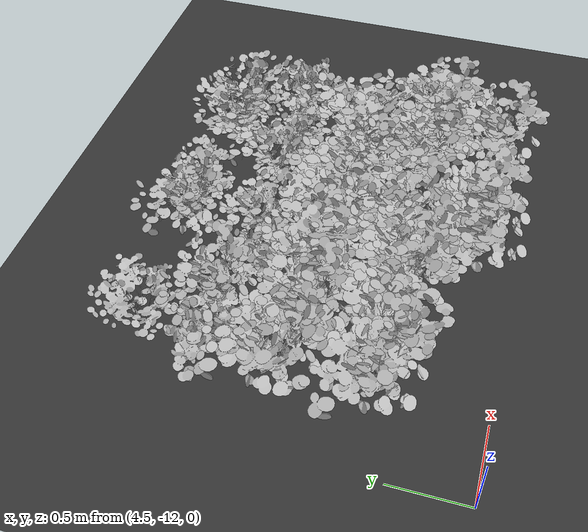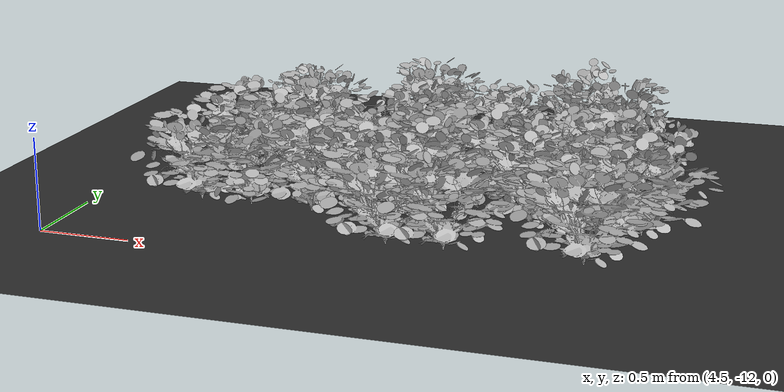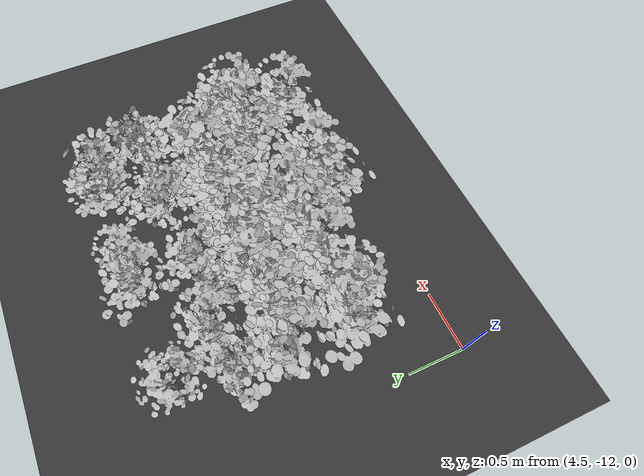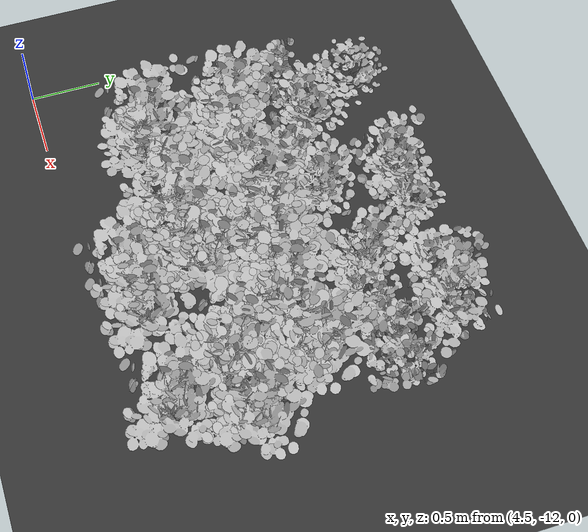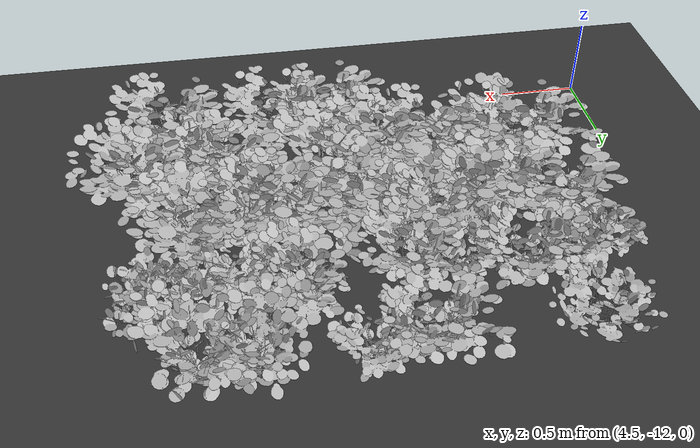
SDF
<sdf version="1.7">
 <world name="default">
  <model name="ground_plane">
   <static>1</static>
   <link name="link">
    <collision name="collision">
     <geometry><plane><normal>0 0 1</normal><size>100 100</size></plane></geometry>
     <surface>
      <contact><collide_bitmask>65535</collide_bitmask></contact>
      <friction><ode><mu>100</mu><mu2>50</mu2></ode></friction>
     </surface>
    </collision>
    <visual name="visual">
     <cast_shadows>0</cast_shadows>
     <geometry><plane><normal>0 0 1</normal><size>100 100</size></plane></geometry>
     <material>
      <ambient>0.2 0.2 0.2 1.0</ambient>
      <diffuse>0.2 0.2 0.2 1.0</diffuse>
      <specular>0.2 0.2 0.2 1.0</specular>
      <emissive>0.2 0.2 0.2 1.0</emissive>
     </material>
    </visual>
   </link>
  </model>
  <model name="ground">
   <pose>5 -0.5 0.01  3.141592654 0 0</pose>
   <static>true</static>
   <link name="body">
    <visual name="visual">
     <cast_shadows>0</cast_shadows>
     <geometry>
      <mesh><uri>file:///home/ifcosta/final_ws/src/cnn_line/worlds/models/ground.obj</uri></mesh>
     </geometry>
    </visual>
   </link>
  </model>
  <model name="plt_30017">
   <pose>5.1 -10.3 0.0129 0.0 0.0 0.31238</pose>
   <static>true</static>
   <link name="body">
    <visual name="visual">
     <geometry>
      <mesh><uri>file:///home/ifcosta/final_ws/src/cnn_line/worlds/models/plant33.obj</uri></mesh>
     </geometry>
    </visual>
   </link>
  </model>
  <model name="plt_30018">
   <pose>5.41 -10.2 0.0167 0.0 0.0 -0.31577</pose>
   <static>true</static>
   <link name="body">
    <visual name="visual">
     <geometry>
      <mesh><uri>file:///home/ifcosta/final_ws/src/cnn_line/worlds/models/plant30.obj</uri></mesh>
     </geometry>
    </visual>
   </link>
  </model>
  <model name="plt_30019">
   <pose>5.73 -10.3 0.012 0.0 0.0 -0.173</pose>
   <static>true</static>
   <link name="body">
    <visual name="visual">
     <geometry>
      <mesh><uri>file:///home/ifcosta/final_ws/src/cnn_line/worlds/models/plant34.obj</uri></mesh>
     </geometry>
    </visual>
   </link>
  </model>
  <model name="plt_30020">
   <pose>6.03 -10.3 0.0152 0.0 0.0 -0.27084</pose>
   <static>true</static>
   <link name="body">
    <visual name="visual">
     <geometry>
      <mesh><uri>file:///home/ifcosta/final_ws/src/cnn_line/worlds/models/plant36.obj</uri></mesh>
     </geometry>
    </visual>
   </link>
  </model>
  <model name="plt_30022">
   <pose>6.61 -10.2 0.0153 0.0 0.0 -0.57249</pose>
   <static>true</static>
   <link name="body">
    <visual name="visual">
     <geometry>
      <mesh><uri>file:///home/ifcosta/final_ws/src/cnn_line/worlds/models/plant36.obj</uri></mesh>
     </geometry>
    </visual>
   </link>
  </model>
  <model name="plt_30023">
   <pose>6.89 -10.3 0.0155 0.0 0.0 -0.2691</pose>
   <static>true</static>
   <link name="body">
    <visual name="visual">
     <geometry>
      <mesh><uri>file:///home/ifcosta/final_ws/src/cnn_line/worlds/models/plant31.obj</uri></mesh>
     </geometry>
    </visual>
   </link>
  </model>
  <model name="plt_30024">
   <pose>7.18 -10.3 0.0155 0.0 0.0 -0.92946</pose>
   <static>true</static>
   <link name="body">
    <visual name="visual">
     <geometry>
      <mesh><uri>file:///home/ifcosta/final_ws/src/cnn_line/worlds/models/plant33.obj</uri></mesh>
     </geometry>
    </visual>
   </link>
  </model>
  <model name="plt_30025">
   <pose>7.49 -10.2 0.0176 0.0 0.0 0.76057</pose>
   <static>true</static>
   <link name="body">
    <visual name="visual">
     <geometry>
      <mesh><uri>file:///home/ifcosta/final_ws/src/cnn_line/worlds/models/plant33.obj</uri></mesh>
     </geometry>
    </visual>
   </link>
  </model>
  <model name="plt_30051">
   <pose>5.14 -9.8 0.0164 0.0 0.0 -1.2351</pose>
   <static>true</static>
   <link name="body">
    <visual name="visual">
     <geometry>
      <mesh><uri>file:///home/ifcosta/final_ws/src/cnn_line/worlds/models/plant35.obj</uri></mesh>
     </geometry>
    </visual>
   </link>
  </model>
  <model name="plt_30054">
   <pose>6.01 -9.78 0.0155 0.0 0.0 -0.52844</pose>
   <static>true</static>
   <link name="body">
    <visual name="visual">
     <geometry>
      <mesh><uri>file:///home/ifcosta/final_ws/src/cnn_line/worlds/models/plant30.obj</uri></mesh>
     </geometry>
    </visual>
   </link>
  </model>
  <model name="plt_30055">
   <pose>6.29 -9.75 0.015 0.0 0.0 -0.61661</pose>
   <static>true</static>
   <link name="body">
    <visual name="visual">
     <geometry>
      <mesh><uri>file:///home/ifcosta/final_ws/src/cnn_line/worlds/models/plant31.obj</uri></mesh>
     </geometry>
    </visual>
   </link>
  </model>
  <model name="plt_30057">
   <pose>6.9 -9.77 0.0161 0.0 0.0 1.0536</pose>
   <static>true</static>
   <link name="body">
    <visual name="visual">
     <geometry>
      <mesh><uri>file:///home/ifcosta/final_ws/src/cnn_line/worlds/models/plant30.obj</uri></mesh>
     </geometry>
    </visual>
   </link>
  </model>
  <model name="plt_30058">
   <pose>7.17 -9.78 0.016 0.0 0.0 2.6557</pose>
   <static>true</static>
   <link name="body">
    <visual name="visual">
     <geometry>
      <mesh><uri>file:///home/ifcosta/final_ws/src/cnn_line/worlds/models/plant30.obj</uri></mesh>
     </geometry>
    </visual>
   </link>
  </model>
  <model name="plt_40123">
   <pose>6.28 -11.7 0.0147 0.0 0.0 0.31965</pose>
   <static>true</static>
   <link name="body">
    <visual name="visual">
     <geometry>
      <mesh><uri>file:///home/ifcosta/final_ws/src/cnn_line/worlds/models/plant37.obj</uri></mesh>
     </geometry>
    </visual>
   </link>
  </model>
  <model name="plt_40124">
   <pose>6.58 -11.7 0.0153 0.0 0.0 0.26518</pose>
   <static>true</static>
   <link name="body">
    <visual name="visual">
     <geometry>
      <mesh><uri>file:///home/ifcosta/final_ws/src/cnn_line/worlds/models/plant37.obj</uri></mesh>
     </geometry>
    </visual>
   </link>
  </model>
  <model name="plt_40126">
   <pose>7.28 -11.7 0.0137 0.0 0.0 -0.015619</pose>
   <static>true</static>
   <link name="body">
    <visual name="visual">
     <geometry>
      <mesh><uri>file:///home/ifcosta/final_ws/src/cnn_line/worlds/models/plant37.obj</uri></mesh>
     </geometry>
    </visual>
   </link>
  </model>
  <model name="plt_40153">
   <pose>5.1 -11.3 0.0173 0.0 0.0 0.098443</pose>
   <static>true</static>
   <link name="body">
    <visual name="visual">
     <geometry>
      <mesh><uri>file:///home/ifcosta/final_ws/src/cnn_line/worlds/models/plant37.obj</uri></mesh>
     </geometry>
    </visual>
   </link>
  </model>
  <model name="plt_40154">
   <pose>5.39 -11.3 0.0154 0.0 0.0 -1.7746</pose>
   <static>true</static>
   <link name="body">
    <visual name="visual">
     <geometry>
      <mesh><uri>file:///home/ifcosta/final_ws/src/cnn_line/worlds/models/plant37.obj</uri></mesh>
     </geometry>
    </visual>
   </link>
  </model>
  <model name="plt_40155">
   <pose>5.74 -11.3 0.0122 0.0 0.0 -0.29898</pose>
   <static>true</static>
   <link name="body">
    <visual name="visual">
     <geometry>
      <mesh><uri>file:///home/ifcosta/final_ws/src/cnn_line/worlds/models/plant37.obj</uri></mesh>
     </geometry>
    </visual>
   </link>
  </model>
  <model name="plt_40156">
   <pose>6.02 -11.3 0.0153 0.0 0.0 -0.4565</pose>
   <static>true</static>
   <link name="body">
    <visual name="visual">
     <geometry>
      <mesh><uri>file:///home/ifcosta/final_ws/src/cnn_line/worlds/models/plant37.obj</uri></mesh>
     </geometry>
    </visual>
   </link>
  </model>
  <model name="plt_40157">
   <pose>6.33 -11.2 0.0133 0.0 0.0 -0.28777</pose>
   <static>true</static>
   <link name="body">
    <visual name="visual">
     <geometry>
      <mesh><uri>file:///home/ifcosta/final_ws/src/cnn_line/worlds/models/plant37.obj</uri></mesh>
     </geometry>
    </visual>
   </link>
  </model>
  <model name="plt_40159">
   <pose>6.91 -11.2 0.0125 0.0 0.0 -0.35303</pose>
   <static>true</static>
   <link name="body">
    <visual name="visual">
     <geometry>
      <mesh><uri>file:///home/ifcosta/final_ws/src/cnn_line/worlds/models/plant37.obj</uri></mesh>
     </geometry>
    </visual>
   </link>
  </model>
  <model name="plt_40160">
   <pose>7.25 -11.3 0.016 0.0 0.0 0.59628</pose>
   <static>true</static>
   <link name="body">
    <visual name="visual">
     <geometry>
      <mesh><uri>file:///home/ifcosta/final_ws/src/cnn_line/worlds/models/plant37.obj</uri></mesh>
     </geometry>
    </visual>
   </link>
  </model>
  <model name="plt_40161">
   <pose>7.49 -11.2 0.0172 0.0 0.0 -0.35032</pose>
   <static>true</static>
   <link name="body">
    <visual name="visual">
     <geometry>
      <mesh><uri>file:///home/ifcosta/final_ws/src/cnn_line/worlds/models/plant37.obj</uri></mesh>
     </geometry>
    </visual>
   </link>
  </model>
  <model name="plt_40187">
   <pose>5.07 -10.7 0.0149 0.0 0.0 -0.26624</pose>
   <static>true</static>
   <link name="body">
    <visual name="visual">
     <geometry>
      <mesh><uri>file:///home/ifcosta/final_ws/src/cnn_line/worlds/models/plant37.obj</uri></mesh>
     </geometry>
    </visual>
   </link>
  </model>
  <model name="plt_40188">
   <pose>5.41 -10.8 0.017 0.0 0.0 0.039749</pose>
   <static>true</static>
   <link name="body">
    <visual name="visual">
     <geometry>
      <mesh><uri>file:///home/ifcosta/final_ws/src/cnn_line/worlds/models/plant37.obj</uri></mesh>
     </geometry>
    </visual>
   </link>
  </model>
  <model name="plt_40189">
   <pose>5.72 -10.7 0.0153 0.0 0.0 0.8003</pose>
   <static>true</static>
   <link name="body">
    <visual name="visual">
     <geometry>
      <mesh><uri>file:///home/ifcosta/final_ws/src/cnn_line/worlds/models/plant37.obj</uri></mesh>
     </geometry>
    </visual>
   </link>
  </model>
  <model name="plt_40190">
   <pose>6.0 -10.7 0.0149 0.0 0.0 -1.8294</pose>
   <static>true</static>
   <link name="body">
    <visual name="visual">
     <geometry>
      <mesh><uri>file:///home/ifcosta/final_ws/src/cnn_line/worlds/models/plant37.obj</uri></mesh>
     </geometry>
    </visual>
   </link>
  </model>
  <model name="plt_40191">
   <pose>6.29 -10.8 0.0168 0.0 0.0 -1.4749</pose>
   <static>true</static>
   <link name="body">
    <visual name="visual">
     <geometry>
      <mesh><uri>file:///home/ifcosta/final_ws/src/cnn_line/worlds/models/plant37.obj</uri></mesh>
     </geometry>
    </visual>
   </link>
  </model>
  <model name="plt_40192">
   <pose>6.66 -10.8 0.0149 0.0 0.0 -0.19252</pose>
   <static>true</static>
   <link name="body">
    <visual name="visual">
     <geometry>
      <mesh><uri>file:///home/ifcosta/final_ws/src/cnn_line/worlds/models/plant37.obj</uri></mesh>
     </geometry>
    </visual>
   </link>
  </model>
  <model name="plt_40193">
   <pose>6.9 -10.8 0.013 0.0 0.0 1.3436</pose>
   <static>true</static>
   <link name="body">
    <visual name="visual">
     <geometry>
      <mesh><uri>file:///home/ifcosta/final_ws/src/cnn_line/worlds/models/plant37.obj</uri></mesh>
     </geometry>
    </visual>
   </link>
  </model>
  <model name="plt_40194">
   <pose>7.18 -10.7 0.0126 0.0 0.0 -0.70726</pose>
   <static>true</static>
   <link name="body">
    <visual name="visual">
     <geometry>
      <mesh><uri>file:///home/ifcosta/final_ws/src/cnn_line/worlds/models/plant37.obj</uri></mesh>
     </geometry>
    </visual>
   </link>
  </model>
 </world>
</sdf>
